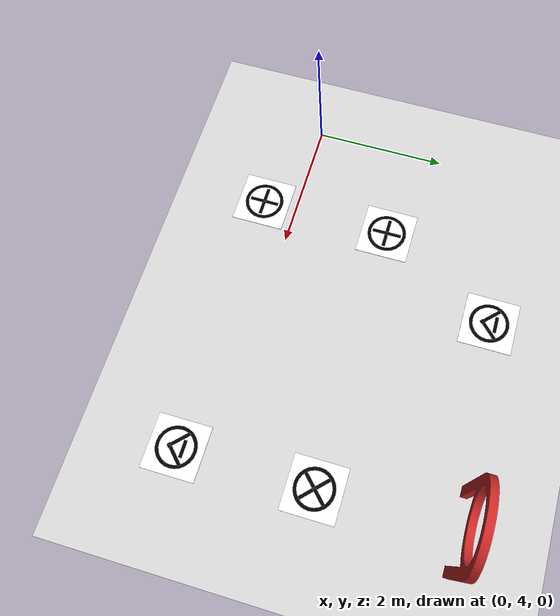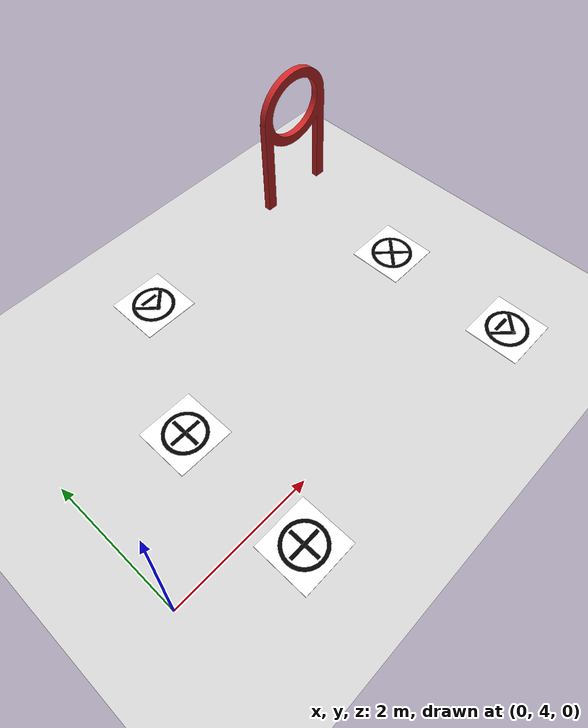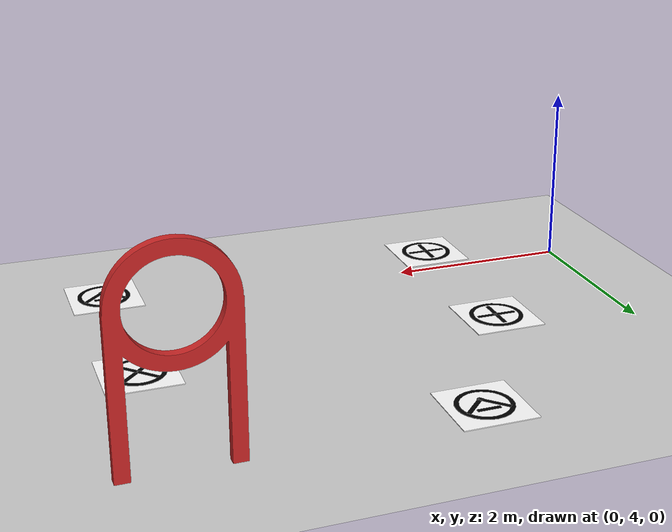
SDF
<sdf version="1.7">
 <world name="default">
  <light name="sun" type="directional">
   <pose>0 0 10 0 -0 0</pose>
   <diffuse>0.8 0.8 0.8 1</diffuse>
   <specular>0.2 0.2 0.2 1</specular>
   <attenuation>
    <range>1000</range>
    <constant>0.9</constant>
    <linear>0.01</linear>
    <quadratic>0.001</quadratic>
   </attenuation>
   <direction>-0.5 0.1 -0.9</direction>
   <spot><inner_angle>0</inner_angle><outer_angle>0</outer_angle><falloff>0</falloff></spot>
  </light>
  <physics type="ode">
   <max_step_size>0.001</max_step_size>
   <real_time_factor>1</real_time_factor>
   <real_time_update_rate>1000</real_time_update_rate>
  </physics>
  <scene><ambient>0.4 0.4 0.4 1</ambient><background>0.7 0.7 0.7 1</background><shadows>1</shadows></scene>
  <gravity>0 0 -9.8</gravity>
  <magnetic_field>6e-06 2.3e-05 -4.2e-05</magnetic_field>
  <atmosphere type="adiabatic"/>
  <include><uri>model://ground_plane</uri><name>ground_plane</name><static>1</static></include>
  <include>
   <uri>model://character_A</uri>
   <name>character_A_1</name>
   <pose>5.47355 3.50253 0 0 0 0</pose>
   <static>1</static>
  </include>
  <include>
   <uri>model://character_A</uri>
   <name>character_A_2</name>
   <pose>2.47757 7.33118 0 0 0 0</pose>
   <static>1</static>
  </include>
  <include>
   <uri>model://character_X</uri>
   <name>character_X_1</name>
   <pose>5.48396 5.52033 0 0 0 0</pose>
   <static>1</static>
  </include>
  <include>
   <uri>model://character_cross</uri>
   <name>cross_1</name>
   <pose>1.449 3.4786 0 0 0 0</pose>
   <static>1</static>
  </include>
  <include>
   <uri>model://character_cross</uri>
   <name>cross_2</name>
   <pose>1.4592 5.4914 0 0 0 0</pose>
   <static>1</static>
  </include>
  <include>
   <uri>model://circle_window_90cm</uri>
   <name>circle_window</name>
   <pose>5.49202 7.55473 0 0 0 0</pose>
  </include>
 </world>
</sdf>

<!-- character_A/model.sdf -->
<sdf version="1.7">
  <model name="character_A">
    <static>true</static>
    <link name="main_link">
      <!-- 白色基底 -->
      <visual name="base">
        <geometry>
          <box>
            <size>0.8 0.8 0.01</size>
          </box>
        </geometry>
        <material>
          <ambient>1 1 1 1</ambient>
          <diffuse>1 1 1 1</diffuse>
        </material>
      </visual>

      <!-- 黑色外环 -->
      <visual name="outer_ring">
        <pose>0 0 0.005 0 0 0</pose>
        <geometry>
          <cylinder>
            <radius>0.3</radius>
            <length>0.01</length>
          </cylinder>
        </geometry>
        <material>
          <ambient>0 0 0 1</ambient>
          <diffuse>0 0 0 1</diffuse>
        </material>
      </visual>

      <!-- 白色内圆 -->
      <visual name="inner_circle">
        <pose>0 0 0.006 0 0 0</pose>
        <geometry>
          <cylinder>
            <radius>0.25</radius>
            <length>0.01</length>
          </cylinder>
        </geometry>
        <material>
          <ambient>1 1 1 1</ambient>
          <diffuse>1 1 1 1</diffuse>
        </material>
      </visual>

      <!-- A字母结构 -->
      <visual name="a_left">
        <pose>-0.1 0 0.007 0 0 0.785</pose>
        <geometry>
          <box>
            <size>0.05 0.35 0.01</size>
          </box>
        </geometry>
        <material>
          <ambient>0 0 0 1</ambient>
          <diffuse>0 0 0 1</diffuse>
        </material>
      </visual>

      <visual name="a_right">
        <pose>0.1 0 0.007 0 0 -0.785</pose>
        <geometry>
          <box>
            <size>0.05 0.35 0.01</size>
          </box>
        </geometry>
        <material>
          <ambient>0 0 0 1</ambient>
          <diffuse>0 0 0 1</diffuse>
        </material>
      </visual>

      <visual name="a_crossbar">
        <pose>0 0.1 0.007 0 0 0</pose>
        <geometry>
          <box>
            <size>0.25 0.05 0.01</size>
          </box>
        </geometry>
        <material>
          <ambient>0 0 0 1</ambient>
          <diffuse>0 0 0 1</diffuse>
        </material>
      </visual>
    </link>
  </model>
</sdf>

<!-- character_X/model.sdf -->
<sdf version="1.7">
  <model name="character_X">
    <static>true</static>
    <link name="main_link">
      <!-- 基础结构 -->
      <visual name="base">
        <geometry>
          <box>
            <size>0.8 0.8 0.01</size>
          </box>
        </geometry>
        <material>
          <ambient>1 1 1 1</ambient>
          <diffuse>1 1 1 1</diffuse>
        </material>
      </visual>

      <visual name="outer_ring">
        <pose>0 0 0.005 0 0 0</pose>
        <geometry>
          <cylinder>
            <radius>0.3</radius>
            <length>0.01</length>
          </cylinder>
        </geometry>
        <material>
          <ambient>0 0 0 1</ambient>
          <diffuse>0 0 0 1</diffuse>
        </material>
      </visual>

      <visual name="inner_circle">
        <pose>0 0 0.006 0 0 0</pose>
        <geometry>
          <cylinder>
            <radius>0.25</radius>
            <length>0.01</length>
          </cylinder>
        </geometry>
        <material>
          <ambient>1 1 1 1</ambient>
          <diffuse>1 1 1 1</diffuse>
        </material>
      </visual>

      <!-- X字母结构 -->
      <visual name="x_left">
        <pose>0 0 0.007 0 0 0.785</pose>
        <geometry>
          <box>
            <size>0.05 0.5 0.01</size>
          </box>
        </geometry>
        <material>
          <ambient>0 0 0 1</ambient>
          <diffuse>0 0 0 1</diffuse>
        </material>
      </visual>

      <visual name="x_right">
        <pose>0 0 0.007 0 0 -0.785</pose>
        <geometry>
          <box>
            <size>0.05 0.5 0.01</size>
          </box>
        </geometry>
        <material>
          <ambient>0 0 0 1</ambient>
          <diffuse>0 0 0 1</diffuse>
        </material>
      </visual>
    </link>
  </model>
</sdf>

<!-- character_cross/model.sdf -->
<sdf version="1.7">
  <model name="character_cross">
    <static>true</static>
    <link name="main_link">
      <!-- 基础结构 -->
      <visual name="base">
        <geometry>
          <box>
            <size>0.8 0.8 0.01</size>
          </box>
        </geometry>
        <material>
          <ambient>1 1 1 1</ambient>
          <diffuse>1 1 1 1</diffuse>
        </material>
      </visual>

      <visual name="outer_ring">
        <pose>0 0 0.005 0 0 0</pose>
        <geometry>
          <cylinder>
            <radius>0.3</radius>
            <length>0.01</length>
          </cylinder>
        </geometry>
        <material>
          <ambient>0 0 0 1</ambient>
          <diffuse>0 0 0 1</diffuse>
        </material>
      </visual>

      <visual name="inner_circle">
        <pose>0 0 0.006 0 0 0</pose>
        <geometry>
          <cylinder>
            <radius>0.25</radius>
            <length>0.01</length>
          </cylinder>
        </geometry>
        <material>
          <ambient>1 1 1 1</ambient>
          <diffuse>1 1 1 1</diffuse>
        </material>
      </visual>

      <!-- 十字架结构 -->
      <visual name="cross_vertical">
        <pose>0 0 0.007 0 0 0</pose>
        <geometry>
          <box>
            <size>0.05 0.45 0.01</size>
          </box>
        </geometry>
        <material>
          <ambient>0 0 0 1</ambient>
          <diffuse>0 0 0 1</diffuse>
        </material>
      </visual>

      <visual name="cross_horizontal">
        <pose>0 0 0.007 0 0 0</pose>
        <geometry>
          <box>
            <size>0.45 0.05 0.01</size>
          </box>
        </geometry>
        <material>
          <ambient>0 0 0 1</ambient>
          <diffuse>0 0 0 1</diffuse>
        </material>
      </visual>
    </link>
  </model>
</sdf>

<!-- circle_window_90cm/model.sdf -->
<sdf version="1.6">
  <static>true</static>
  <model name="circle_window_90cm">
    <link name="link">
      <collision name='collision'>
        <pose frame=''>0 0 0 0 0 0</pose>
        <geometry>
          <mesh>
            <uri>model://circle_window_90cm/meshes/circle_window_90cm.stl</uri>
          </mesh>
        </geometry>
      </collision>
      <!-- 显示设置 -->
      <visual name="visual">
        <geometry>
          <mesh>
            <scale>1 1 1</scale>
            <uri>model://circle_window_90cm/meshes/circle_window_90cm.stl</uri>
          </mesh>
        </geometry>
        <material>
          <script>
            <name>Gazebo/Red</name>
            <uri>file://media/materials/scripts/gazebo.material</uri>
          </script>
        </material>
      </visual>
    </link>
  </model>
</sdf>
